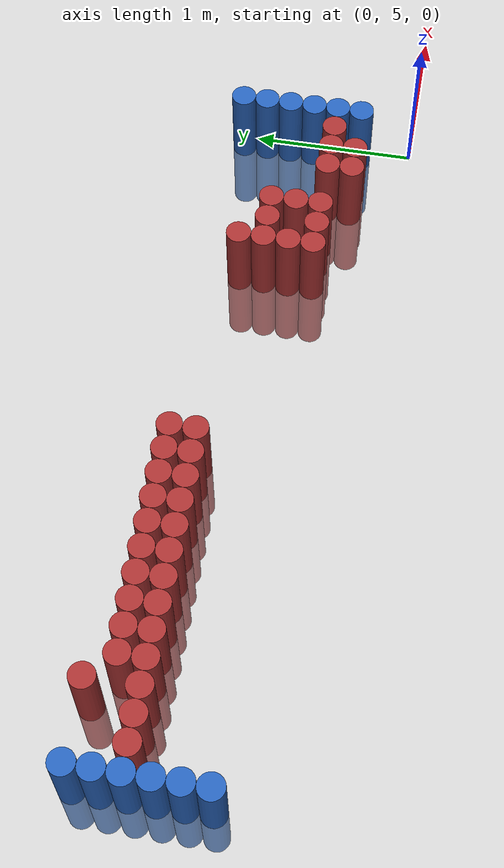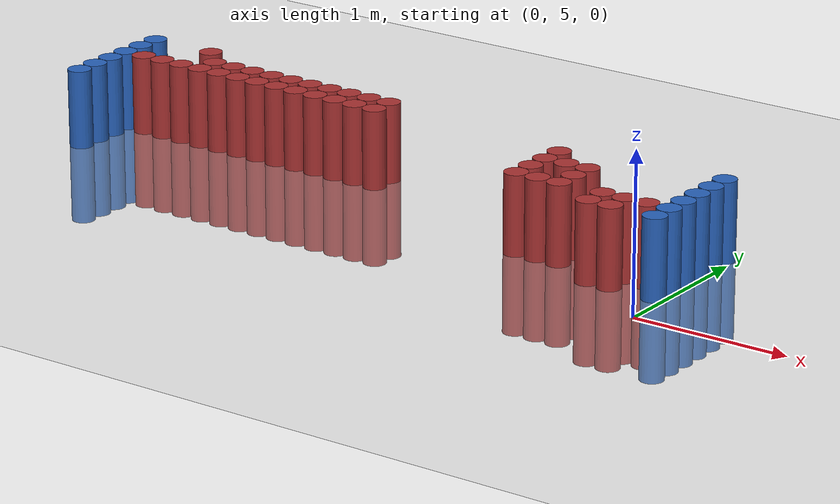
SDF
<sdf version="1.6">
 <world name="default">
  <model name="ground_plane">
   <static>1</static>
   <link name="link">
    <collision name="collision">
     <geometry><plane><normal>0 0 1</normal><size>100 100</size></plane></geometry>
     <surface><friction><ode><mu>100</mu><mu2>50</mu2></ode></friction></surface>
    </collision>
    <visual name="visual">
     <cast_shadows>0</cast_shadows>
     <geometry><plane><normal>0 0 1</normal><size>100 100</size></plane></geometry>
     <material>
      <script><uri>file://media/materials/scripts/gazebo.material</uri><name>Gazebo/Grey</name></script>
     </material>
    </visual>
   </link>
  </model>
  <model name="unit_cylinder_98">
   <static>1</static>
   <pose>-4.425000 5.475000 0.000000 0.000000 0.000000 0.000000</pose>
   <link name="link">
    <inertial>
     <mass>1</mass>
     <inertia><ixx>0.145833</ixx><ixy>0</ixy><ixz>0</ixz><iyy>0.145833</iyy><iyz>0</iyz><izz>0.125</izz></inertia>
    </inertial>
    <collision name="collision">
     <geometry><cylinder><radius>0.075000</radius><length>1</length></cylinder></geometry>
    </collision>
    <visual name="visual">
     <geometry><cylinder><radius>0.075000</radius><length>1</length></cylinder></geometry>
     <material>
      <ambient>0.152000 0.379000 0.720000 1</ambient>
      <diffuse>0.152000 0.379000 0.720000 1</diffuse>
     </material>
     <material>
      <script><name>Gazebo/Grey</name><uri>file://media/materials/scripts/gazebo.material</uri></script>
     </material>
    </visual>
   </link>
  </model>
  <model name="unit_cylinder_99">
   <static>1</static>
   <pose>-4.425000 5.625000 0.000000 0.000000 0.000000 0.000000</pose>
   <link name="link">
    <inertial>
     <mass>1</mass>
     <inertia><ixx>0.145833</ixx><ixy>0</ixy><ixz>0</ixz><iyy>0.145833</iyy><iyz>0</iyz><izz>0.125</izz></inertia>
    </inertial>
    <collision name="collision">
     <geometry><cylinder><radius>0.075000</radius><length>1</length></cylinder></geometry>
    </collision>
    <visual name="visual">
     <geometry><cylinder><radius>0.075000</radius><length>1</length></cylinder></geometry>
     <material>
      <ambient>0.152000 0.379000 0.720000 1</ambient>
      <diffuse>0.152000 0.379000 0.720000 1</diffuse>
     </material>
     <material>
      <script><name>Gazebo/Grey</name><uri>file://media/materials/scripts/gazebo.material</uri></script>
     </material>
    </visual>
   </link>
  </model>
  <model name="unit_cylinder_100">
   <static>1</static>
   <pose>-4.425000 5.775000 0.000000 0.000000 0.000000 0.000000</pose>
   <link name="link">
    <inertial>
     <mass>1</mass>
     <inertia><ixx>0.145833</ixx><ixy>0</ixy><ixz>0</ixz><iyy>0.145833</iyy><iyz>0</iyz><izz>0.125</izz></inertia>
    </inertial>
    <collision name="collision">
     <geometry><cylinder><radius>0.075000</radius><length>1</length></cylinder></geometry>
    </collision>
    <visual name="visual">
     <geometry><cylinder><radius>0.075000</radius><length>1</length></cylinder></geometry>
     <material>
      <ambient>0.152000 0.379000 0.720000 1</ambient>
      <diffuse>0.152000 0.379000 0.720000 1</diffuse>
     </material>
     <material>
      <script><name>Gazebo/Grey</name><uri>file://media/materials/scripts/gazebo.material</uri></script>
     </material>
    </visual>
   </link>
  </model>
  <model name="unit_cylinder_101">
   <static>1</static>
   <pose>-4.425000 5.925000 0.000000 0.000000 0.000000 0.000000</pose>
   <link name="link">
    <inertial>
     <mass>1</mass>
     <inertia><ixx>0.145833</ixx><ixy>0</ixy><ixz>0</ixz><iyy>0.145833</iyy><iyz>0</iyz><izz>0.125</izz></inertia>
    </inertial>
    <collision name="collision">
     <geometry><cylinder><radius>0.075000</radius><length>1</length></cylinder></geometry>
    </collision>
    <visual name="visual">
     <geometry><cylinder><radius>0.075000</radius><length>1</length></cylinder></geometry>
     <material>
      <ambient>0.152000 0.379000 0.720000 1</ambient>
      <diffuse>0.152000 0.379000 0.720000 1</diffuse>
     </material>
     <material>
      <script><name>Gazebo/Grey</name><uri>file://media/materials/scripts/gazebo.material</uri></script>
     </material>
    </visual>
   </link>
  </model>
  <model name="unit_cylinder_102">
   <static>1</static>
   <pose>-4.425000 6.075000 0.000000 0.000000 0.000000 0.000000</pose>
   <link name="link">
    <inertial>
     <mass>1</mass>
     <inertia><ixx>0.145833</ixx><ixy>0</ixy><ixz>0</ixz><iyy>0.145833</iyy><iyz>0</iyz><izz>0.125</izz></inertia>
    </inertial>
    <collision name="collision">
     <geometry><cylinder><radius>0.075000</radius><length>1</length></cylinder></geometry>
    </collision>
    <visual name="visual">
     <geometry><cylinder><radius>0.075000</radius><length>1</length></cylinder></geometry>
     <material>
      <ambient>0.152000 0.379000 0.720000 1</ambient>
      <diffuse>0.152000 0.379000 0.720000 1</diffuse>
     </material>
     <material>
      <script><name>Gazebo/Grey</name><uri>file://media/materials/scripts/gazebo.material</uri></script>
     </material>
    </visual>
   </link>
  </model>
  <model name="unit_cylinder_103">
   <static>1</static>
   <pose>-4.425000 6.225000 0.000000 0.000000 0.000000 0.000000</pose>
   <link name="link">
    <inertial>
     <mass>1</mass>
     <inertia><ixx>0.145833</ixx><ixy>0</ixy><ixz>0</ixz><iyy>0.145833</iyy><iyz>0</iyz><izz>0.125</izz></inertia>
    </inertial>
    <collision name="collision">
     <geometry><cylinder><radius>0.075000</radius><length>1</length></cylinder></geometry>
    </collision>
    <visual name="visual">
     <geometry><cylinder><radius>0.075000</radius><length>1</length></cylinder></geometry>
     <material>
      <ambient>0.152000 0.379000 0.720000 1</ambient>
      <diffuse>0.152000 0.379000 0.720000 1</diffuse>
     </material>
     <material>
      <script><name>Gazebo/Grey</name><uri>file://media/materials/scripts/gazebo.material</uri></script>
     </material>
    </visual>
   </link>
  </model>
  <model name="unit_cylinder_126">
   <static>1</static>
   <pose>-4.275000 5.925000 0.000000 0.000000 0.000000 0.000000</pose>
   <link name="link">
    <inertial>
     <mass>1</mass>
     <inertia><ixx>0.145833</ixx><ixy>0</ixy><ixz>0</ixz><iyy>0.145833</iyy><iyz>0</iyz><izz>0.125</izz></inertia>
    </inertial>
    <collision name="collision">
     <geometry><cylinder><radius>0.075000</radius><length>1</length></cylinder></geometry>
    </collision>
    <visual name="visual">
     <geometry><cylinder><radius>0.075000</radius><length>1</length></cylinder></geometry>
     <material>
      <ambient>0.648000 0.192000 0.192000 1</ambient>
      <diffuse>0.648000 0.192000 0.192000 1</diffuse>
     </material>
     <material>
      <script><name>Gazebo/Grey</name><uri>file://media/materials/scripts/gazebo.material</uri></script>
     </material>
    </visual>
   </link>
  </model>
  <model name="unit_cylinder_128">
   <static>1</static>
   <pose>-4.125000 5.925000 0.000000 0.000000 0.000000 0.000000</pose>
   <link name="link">
    <inertial>
     <mass>1</mass>
     <inertia><ixx>0.145833</ixx><ixy>0</ixy><ixz>0</ixz><iyy>0.145833</iyy><iyz>0</iyz><izz>0.125</izz></inertia>
    </inertial>
    <collision name="collision">
     <geometry><cylinder><radius>0.075000</radius><length>1</length></cylinder></geometry>
    </collision>
    <visual name="visual">
     <geometry><cylinder><radius>0.075000</radius><length>1</length></cylinder></geometry>
     <material>
      <ambient>0.648000 0.192000 0.192000 1</ambient>
      <diffuse>0.648000 0.192000 0.192000 1</diffuse>
     </material>
     <material>
      <script><name>Gazebo/Grey</name><uri>file://media/materials/scripts/gazebo.material</uri></script>
     </material>
    </visual>
   </link>
  </model>
  <model name="unit_cylinder_133">
   <static>1</static>
   <pose>-3.975000 5.925000 0.000000 0.000000 0.000000 0.000000</pose>
   <link name="link">
    <inertial>
     <mass>1</mass>
     <inertia><ixx>0.145833</ixx><ixy>0</ixy><ixz>0</ixz><iyy>0.145833</iyy><iyz>0</iyz><izz>0.125</izz></inertia>
    </inertial>
    <collision name="collision">
     <geometry><cylinder><radius>0.075000</radius><length>1</length></cylinder></geometry>
    </collision>
    <visual name="visual">
     <geometry><cylinder><radius>0.075000</radius><length>1</length></cylinder></geometry>
     <material>
      <ambient>0.648000 0.192000 0.192000 1</ambient>
      <diffuse>0.648000 0.192000 0.192000 1</diffuse>
     </material>
     <material>
      <script><name>Gazebo/Grey</name><uri>file://media/materials/scripts/gazebo.material</uri></script>
     </material>
    </visual>
   </link>
  </model>
  <model name="unit_cylinder_134">
   <static>1</static>
   <pose>-3.975000 6.225000 0.000000 0.000000 0.000000 0.000000</pose>
   <link name="link">
    <inertial>
     <mass>1</mass>
     <inertia><ixx>0.145833</ixx><ixy>0</ixy><ixz>0</ixz><iyy>0.145833</iyy><iyz>0</iyz><izz>0.125</izz></inertia>
    </inertial>
    <collision name="collision">
     <geometry><cylinder><radius>0.075000</radius><length>1</length></cylinder></geometry>
    </collision>
    <visual name="visual">
     <geometry><cylinder><radius>0.075000</radius><length>1</length></cylinder></geometry>
     <material>
      <ambient>0.648000 0.192000 0.192000 1</ambient>
      <diffuse>0.648000 0.192000 0.192000 1</diffuse>
     </material>
     <material>
      <script><name>Gazebo/Grey</name><uri>file://media/materials/scripts/gazebo.material</uri></script>
     </material>
    </visual>
   </link>
  </model>
  <model name="unit_cylinder_151">
   <static>1</static>
   <pose>-3.825000 5.925000 0.000000 0.000000 0.000000 0.000000</pose>
   <link name="link">
    <inertial>
     <mass>1</mass>
     <inertia><ixx>0.145833</ixx><ixy>0</ixy><ixz>0</ixz><iyy>0.145833</iyy><iyz>0</iyz><izz>0.125</izz></inertia>
    </inertial>
    <collision name="collision">
     <geometry><cylinder><radius>0.075000</radius><length>1</length></cylinder></geometry>
    </collision>
    <visual name="visual">
     <geometry><cylinder><radius>0.075000</radius><length>1</length></cylinder></geometry>
     <material>
      <ambient>0.648000 0.192000 0.192000 1</ambient>
      <diffuse>0.648000 0.192000 0.192000 1</diffuse>
     </material>
     <material>
      <script><name>Gazebo/Grey</name><uri>file://media/materials/scripts/gazebo.material</uri></script>
     </material>
    </visual>
   </link>
  </model>
  <model name="unit_cylinder_152">
   <static>1</static>
   <pose>-3.825000 6.075000 0.000000 0.000000 0.000000 0.000000</pose>
   <link name="link">
    <inertial>
     <mass>1</mass>
     <inertia><ixx>0.145833</ixx><ixy>0</ixy><ixz>0</ixz><iyy>0.145833</iyy><iyz>0</iyz><izz>0.125</izz></inertia>
    </inertial>
    <collision name="collision">
     <geometry><cylinder><radius>0.075000</radius><length>1</length></cylinder></geometry>
    </collision>
    <visual name="visual">
     <geometry><cylinder><radius>0.075000</radius><length>1</length></cylinder></geometry>
     <material>
      <ambient>0.648000 0.192000 0.192000 1</ambient>
      <diffuse>0.648000 0.192000 0.192000 1</diffuse>
     </material>
     <material>
      <script><name>Gazebo/Grey</name><uri>file://media/materials/scripts/gazebo.material</uri></script>
     </material>
    </visual>
   </link>
  </model>
  <model name="unit_cylinder_158">
   <static>1</static>
   <pose>-3.675000 5.925000 0.000000 0.000000 0.000000 0.000000</pose>
   <link name="link">
    <inertial>
     <mass>1</mass>
     <inertia><ixx>0.145833</ixx><ixy>0</ixy><ixz>0</ixz><iyy>0.145833</iyy><iyz>0</iyz><izz>0.125</izz></inertia>
    </inertial>
    <collision name="collision">
     <geometry><cylinder><radius>0.075000</radius><length>1</length></cylinder></geometry>
    </collision>
    <visual name="visual">
     <geometry><cylinder><radius>0.075000</radius><length>1</length></cylinder></geometry>
     <material>
      <ambient>0.648000 0.192000 0.192000 1</ambient>
      <diffuse>0.648000 0.192000 0.192000 1</diffuse>
     </material>
     <material>
      <script><name>Gazebo/Grey</name><uri>file://media/materials/scripts/gazebo.material</uri></script>
     </material>
    </visual>
   </link>
  </model>
  <model name="unit_cylinder_159">
   <static>1</static>
   <pose>-3.675000 6.075000 0.000000 0.000000 0.000000 0.000000</pose>
   <link name="link">
    <inertial>
     <mass>1</mass>
     <inertia><ixx>0.145833</ixx><ixy>0</ixy><ixz>0</ixz><iyy>0.145833</iyy><iyz>0</iyz><izz>0.125</izz></inertia>
    </inertial>
    <collision name="collision">
     <geometry><cylinder><radius>0.075000</radius><length>1</length></cylinder></geometry>
    </collision>
    <visual name="visual">
     <geometry><cylinder><radius>0.075000</radius><length>1</length></cylinder></geometry>
     <material>
      <ambient>0.648000 0.192000 0.192000 1</ambient>
      <diffuse>0.648000 0.192000 0.192000 1</diffuse>
     </material>
     <material>
      <script><name>Gazebo/Grey</name><uri>file://media/materials/scripts/gazebo.material</uri></script>
     </material>
    </visual>
   </link>
  </model>
  <model name="unit_cylinder_172">
   <static>1</static>
   <pose>-3.525000 5.925000 0.000000 0.000000 0.000000 0.000000</pose>
   <link name="link">
    <inertial>
     <mass>1</mass>
     <inertia><ixx>0.145833</ixx><ixy>0</ixy><ixz>0</ixz><iyy>0.145833</iyy><iyz>0</iyz><izz>0.125</izz></inertia>
    </inertial>
    <collision name="collision">
     <geometry><cylinder><radius>0.075000</radius><length>1</length></cylinder></geometry>
    </collision>
    <visual name="visual">
     <geometry><cylinder><radius>0.075000</radius><length>1</length></cylinder></geometry>
     <material>
      <ambient>0.648000 0.192000 0.192000 1</ambient>
      <diffuse>0.648000 0.192000 0.192000 1</diffuse>
     </material>
     <material>
      <script><name>Gazebo/Grey</name><uri>file://media/materials/scripts/gazebo.material</uri></script>
     </material>
    </visual>
   </link>
  </model>
  <model name="unit_cylinder_173">
   <static>1</static>
   <pose>-3.525000 6.075000 0.000000 0.000000 0.000000 0.000000</pose>
   <link name="link">
    <inertial>
     <mass>1</mass>
     <inertia><ixx>0.145833</ixx><ixy>0</ixy><ixz>0</ixz><iyy>0.145833</iyy><iyz>0</iyz><izz>0.125</izz></inertia>
    </inertial>
    <collision name="collision">
     <geometry><cylinder><radius>0.075000</radius><length>1</length></cylinder></geometry>
    </collision>
    <visual name="visual">
     <geometry><cylinder><radius>0.075000</radius><length>1</length></cylinder></geometry>
     <material>
      <ambient>0.648000 0.192000 0.192000 1</ambient>
      <diffuse>0.648000 0.192000 0.192000 1</diffuse>
     </material>
     <material>
      <script><name>Gazebo/Grey</name><uri>file://media/materials/scripts/gazebo.material</uri></script>
     </material>
    </visual>
   </link>
  </model>
  <model name="unit_cylinder_186">
   <static>1</static>
   <pose>-3.375000 5.925000 0.000000 0.000000 0.000000 0.000000</pose>
   <link name="link">
    <inertial>
     <mass>1</mass>
     <inertia><ixx>0.145833</ixx><ixy>0</ixy><ixz>0</ixz><iyy>0.145833</iyy><iyz>0</iyz><izz>0.125</izz></inertia>
    </inertial>
    <collision name="collision">
     <geometry><cylinder><radius>0.075000</radius><length>1</length></cylinder></geometry>
    </collision>
    <visual name="visual">
     <geometry><cylinder><radius>0.075000</radius><length>1</length></cylinder></geometry>
     <material>
      <ambient>0.648000 0.192000 0.192000 1</ambient>
      <diffuse>0.648000 0.192000 0.192000 1</diffuse>
     </material>
     <material>
      <script><name>Gazebo/Grey</name><uri>file://media/materials/scripts/gazebo.material</uri></script>
     </material>
    </visual>
   </link>
  </model>
  <model name="unit_cylinder_187">
   <static>1</static>
   <pose>-3.375000 6.075000 0.000000 0.000000 0.000000 0.000000</pose>
   <link name="link">
    <inertial>
     <mass>1</mass>
     <inertia><ixx>0.145833</ixx><ixy>0</ixy><ixz>0</ixz><iyy>0.145833</iyy><iyz>0</iyz><izz>0.125</izz></inertia>
    </inertial>
    <collision name="collision">
     <geometry><cylinder><radius>0.075000</radius><length>1</length></cylinder></geometry>
    </collision>
    <visual name="visual">
     <geometry><cylinder><radius>0.075000</radius><length>1</length></cylinder></geometry>
     <material>
      <ambient>0.648000 0.192000 0.192000 1</ambient>
      <diffuse>0.648000 0.192000 0.192000 1</diffuse>
     </material>
     <material>
      <script><name>Gazebo/Grey</name><uri>file://media/materials/scripts/gazebo.material</uri></script>
     </material>
    </visual>
   </link>
  </model>
  <model name="unit_cylinder_198">
   <static>1</static>
   <pose>-3.225000 5.925000 0.000000 0.000000 0.000000 0.000000</pose>
   <link name="link">
    <inertial>
     <mass>1</mass>
     <inertia><ixx>0.145833</ixx><ixy>0</ixy><ixz>0</ixz><iyy>0.145833</iyy><iyz>0</iyz><izz>0.125</izz></inertia>
    </inertial>
    <collision name="collision">
     <geometry><cylinder><radius>0.075000</radius><length>1</length></cylinder></geometry>
    </collision>
    <visual name="visual">
     <geometry><cylinder><radius>0.075000</radius><length>1</length></cylinder></geometry>
     <material>
      <ambient>0.648000 0.192000 0.192000 1</ambient>
      <diffuse>0.648000 0.192000 0.192000 1</diffuse>
     </material>
     <material>
      <script><name>Gazebo/Grey</name><uri>file://media/materials/scripts/gazebo.material</uri></script>
     </material>
    </visual>
   </link>
  </model>
  <model name="unit_cylinder_199">
   <static>1</static>
   <pose>-3.225000 6.075000 0.000000 0.000000 0.000000 0.000000</pose>
   <link name="link">
    <inertial>
     <mass>1</mass>
     <inertia><ixx>0.145833</ixx><ixy>0</ixy><ixz>0</ixz><iyy>0.145833</iyy><iyz>0</iyz><izz>0.125</izz></inertia>
    </inertial>
    <collision name="collision">
     <geometry><cylinder><radius>0.075000</radius><length>1</length></cylinder></geometry>
    </collision>
    <visual name="visual">
     <geometry><cylinder><radius>0.075000</radius><length>1</length></cylinder></geometry>
     <material>
      <ambient>0.648000 0.192000 0.192000 1</ambient>
      <diffuse>0.648000 0.192000 0.192000 1</diffuse>
     </material>
     <material>
      <script><name>Gazebo/Grey</name><uri>file://media/materials/scripts/gazebo.material</uri></script>
     </material>
    </visual>
   </link>
  </model>
  <model name="unit_cylinder_210">
   <static>1</static>
   <pose>-3.075000 5.925000 0.000000 0.000000 0.000000 0.000000</pose>
   <link name="link">
    <inertial>
     <mass>1</mass>
     <inertia><ixx>0.145833</ixx><ixy>0</ixy><ixz>0</ixz><iyy>0.145833</iyy><iyz>0</iyz><izz>0.125</izz></inertia>
    </inertial>
    <collision name="collision">
     <geometry><cylinder><radius>0.075000</radius><length>1</length></cylinder></geometry>
    </collision>
    <visual name="visual">
     <geometry><cylinder><radius>0.075000</radius><length>1</length></cylinder></geometry>
     <material>
      <ambient>0.648000 0.192000 0.192000 1</ambient>
      <diffuse>0.648000 0.192000 0.192000 1</diffuse>
     </material>
     <material>
      <script><name>Gazebo/Grey</name><uri>file://media/materials/scripts/gazebo.material</uri></script>
     </material>
    </visual>
   </link>
  </model>
  <model name="unit_cylinder_211">
   <static>1</static>
   <pose>-3.075000 6.075000 0.000000 0.000000 0.000000 0.000000</pose>
   <link name="link">
    <inertial>
     <mass>1</mass>
     <inertia><ixx>0.145833</ixx><ixy>0</ixy><ixz>0</ixz><iyy>0.145833</iyy><iyz>0</iyz><izz>0.125</izz></inertia>
    </inertial>
    <collision name="collision">
     <geometry><cylinder><radius>0.075000</radius><length>1</length></cylinder></geometry>
    </collision>
    <visual name="visual">
     <geometry><cylinder><radius>0.075000</radius><length>1</length></cylinder></geometry>
     <material>
      <ambient>0.648000 0.192000 0.192000 1</ambient>
      <diffuse>0.648000 0.192000 0.192000 1</diffuse>
     </material>
     <material>
      <script><name>Gazebo/Grey</name><uri>file://media/materials/scripts/gazebo.material</uri></script>
     </material>
    </visual>
   </link>
  </model>
  <model name="unit_cylinder_222">
   <static>1</static>
   <pose>-2.925000 5.925000 0.000000 0.000000 0.000000 0.000000</pose>
   <link name="link">
    <inertial>
     <mass>1</mass>
     <inertia><ixx>0.145833</ixx><ixy>0</ixy><ixz>0</ixz><iyy>0.145833</iyy><iyz>0</iyz><izz>0.125</izz></inertia>
    </inertial>
    <collision name="collision">
     <geometry><cylinder><radius>0.075000</radius><length>1</length></cylinder></geometry>
    </collision>
    <visual name="visual">
     <geometry><cylinder><radius>0.075000</radius><length>1</length></cylinder></geometry>
     <material>
      <ambient>0.648000 0.192000 0.192000 1</ambient>
      <diffuse>0.648000 0.192000 0.192000 1</diffuse>
     </material>
     <material>
      <script><name>Gazebo/Grey</name><uri>file://media/materials/scripts/gazebo.material</uri></script>
     </material>
    </visual>
   </link>
  </model>
  <model name="unit_cylinder_223">
   <static>1</static>
   <pose>-2.925000 6.075000 0.000000 0.000000 0.000000 0.000000</pose>
   <link name="link">
    <inertial>
     <mass>1</mass>
     <inertia><ixx>0.145833</ixx><ixy>0</ixy><ixz>0</ixz><iyy>0.145833</iyy><iyz>0</iyz><izz>0.125</izz></inertia>
    </inertial>
    <collision name="collision">
     <geometry><cylinder><radius>0.075000</radius><length>1</length></cylinder></geometry>
    </collision>
    <visual name="visual">
     <geometry><cylinder><radius>0.075000</radius><length>1</length></cylinder></geometry>
     <material>
      <ambient>0.648000 0.192000 0.192000 1</ambient>
      <diffuse>0.648000 0.192000 0.192000 1</diffuse>
     </material>
     <material>
      <script><name>Gazebo/Grey</name><uri>file://media/materials/scripts/gazebo.material</uri></script>
     </material>
    </visual>
   </link>
  </model>
  <model name="unit_cylinder_234">
   <static>1</static>
   <pose>-2.775000 5.925000 0.000000 0.000000 0.000000 0.000000</pose>
   <link name="link">
    <inertial>
     <mass>1</mass>
     <inertia><ixx>0.145833</ixx><ixy>0</ixy><ixz>0</ixz><iyy>0.145833</iyy><iyz>0</iyz><izz>0.125</izz></inertia>
    </inertial>
    <collision name="collision">
     <geometry><cylinder><radius>0.075000</radius><length>1</length></cylinder></geometry>
    </collision>
    <visual name="visual">
     <geometry><cylinder><radius>0.075000</radius><length>1</length></cylinder></geometry>
     <material>
      <ambient>0.648000 0.192000 0.192000 1</ambient>
      <diffuse>0.648000 0.192000 0.192000 1</diffuse>
     </material>
     <material>
      <script><name>Gazebo/Grey</name><uri>file://media/materials/scripts/gazebo.material</uri></script>
     </material>
    </visual>
   </link>
  </model>
  <model name="unit_cylinder_235">
   <static>1</static>
   <pose>-2.775000 6.075000 0.000000 0.000000 0.000000 0.000000</pose>
   <link name="link">
    <inertial>
     <mass>1</mass>
     <inertia><ixx>0.145833</ixx><ixy>0</ixy><ixz>0</ixz><iyy>0.145833</iyy><iyz>0</iyz><izz>0.125</izz></inertia>
    </inertial>
    <collision name="collision">
     <geometry><cylinder><radius>0.075000</radius><length>1</length></cylinder></geometry>
    </collision>
    <visual name="visual">
     <geometry><cylinder><radius>0.075000</radius><length>1</length></cylinder></geometry>
     <material>
      <ambient>0.648000 0.192000 0.192000 1</ambient>
      <diffuse>0.648000 0.192000 0.192000 1</diffuse>
     </material>
     <material>
      <script><name>Gazebo/Grey</name><uri>file://media/materials/scripts/gazebo.material</uri></script>
     </material>
    </visual>
   </link>
  </model>
  <model name="unit_cylinder_246">
   <static>1</static>
   <pose>-2.625000 5.925000 0.000000 0.000000 0.000000 0.000000</pose>
   <link name="link">
    <inertial>
     <mass>1</mass>
     <inertia><ixx>0.145833</ixx><ixy>0</ixy><ixz>0</ixz><iyy>0.145833</iyy><iyz>0</iyz><izz>0.125</izz></inertia>
    </inertial>
    <collision name="collision">
     <geometry><cylinder><radius>0.075000</radius><length>1</length></cylinder></geometry>
    </collision>
    <visual name="visual">
     <geometry><cylinder><radius>0.075000</radius><length>1</length></cylinder></geometry>
     <material>
      <ambient>0.648000 0.192000 0.192000 1</ambient>
      <diffuse>0.648000 0.192000 0.192000 1</diffuse>
     </material>
     <material>
      <script><name>Gazebo/Grey</name><uri>file://media/materials/scripts/gazebo.material</uri></script>
     </material>
    </visual>
   </link>
  </model>
  <model name="unit_cylinder_247">
   <static>1</static>
   <pose>-2.625000 6.075000 0.000000 0.000000 0.000000 0.000000</pose>
   <link name="link">
    <inertial>
     <mass>1</mass>
     <inertia><ixx>0.145833</ixx><ixy>0</ixy><ixz>0</ixz><iyy>0.145833</iyy><iyz>0</iyz><izz>0.125</izz></inertia>
    </inertial>
    <collision name="collision">
     <geometry><cylinder><radius>0.075000</radius><length>1</length></cylinder></geometry>
    </collision>
    <visual name="visual">
     <geometry><cylinder><radius>0.075000</radius><length>1</length></cylinder></geometry>
     <material>
      <ambient>0.648000 0.192000 0.192000 1</ambient>
      <diffuse>0.648000 0.192000 0.192000 1</diffuse>
     </material>
     <material>
      <script><name>Gazebo/Grey</name><uri>file://media/materials/scripts/gazebo.material</uri></script>
     </material>
    </visual>
   </link>
  </model>
  <model name="unit_cylinder_259">
   <static>1</static>
   <pose>-2.475000 5.925000 0.000000 0.000000 0.000000 0.000000</pose>
   <link name="link">
    <inertial>
     <mass>1</mass>
     <inertia><ixx>0.145833</ixx><ixy>0</ixy><ixz>0</ixz><iyy>0.145833</iyy><iyz>0</iyz><izz>0.125</izz></inertia>
    </inertial>
    <collision name="collision">
     <geometry><cylinder><radius>0.075000</radius><length>1</length></cylinder></geometry>
    </collision>
    <visual name="visual">
     <geometry><cylinder><radius>0.075000</radius><length>1</length></cylinder></geometry>
     <material>
      <ambient>0.648000 0.192000 0.192000 1</ambient>
      <diffuse>0.648000 0.192000 0.192000 1</diffuse>
     </material>
     <material>
      <script><name>Gazebo/Grey</name><uri>file://media/materials/scripts/gazebo.material</uri></script>
     </material>
    </visual>
   </link>
  </model>
  <model name="unit_cylinder_260">
   <static>1</static>
   <pose>-2.475000 6.075000 0.000000 0.000000 0.000000 0.000000</pose>
   <link name="link">
    <inertial>
     <mass>1</mass>
     <inertia><ixx>0.145833</ixx><ixy>0</ixy><ixz>0</ixz><iyy>0.145833</iyy><iyz>0</iyz><izz>0.125</izz></inertia>
    </inertial>
    <collision name="collision">
     <geometry><cylinder><radius>0.075000</radius><length>1</length></cylinder></geometry>
    </collision>
    <visual name="visual">
     <geometry><cylinder><radius>0.075000</radius><length>1</length></cylinder></geometry>
     <material>
      <ambient>0.648000 0.192000 0.192000 1</ambient>
      <diffuse>0.648000 0.192000 0.192000 1</diffuse>
     </material>
     <material>
      <script><name>Gazebo/Grey</name><uri>file://media/materials/scripts/gazebo.material</uri></script>
     </material>
    </visual>
   </link>
  </model>
  <model name="unit_cylinder_277">
   <static>1</static>
   <pose>-1.125000 5.475000 0.000000 0.000000 0.000000 0.000000</pose>
   <link name="link">
    <inertial>
     <mass>1</mass>
     <inertia><ixx>0.145833</ixx><ixy>0</ixy><ixz>0</ixz><iyy>0.145833</iyy><iyz>0</iyz><izz>0.125</izz></inertia>
    </inertial>
    <collision name="collision">
     <geometry><cylinder><radius>0.075000</radius><length>1</length></cylinder></geometry>
    </collision>
    <visual name="visual">
     <geometry><cylinder><radius>0.075000</radius><length>1</length></cylinder></geometry>
     <material>
      <ambient>0.648000 0.192000 0.192000 1</ambient>
      <diffuse>0.648000 0.192000 0.192000 1</diffuse>
     </material>
     <material>
      <script><name>Gazebo/Grey</name><uri>file://media/materials/scripts/gazebo.material</uri></script>
     </material>
    </visual>
   </link>
  </model>
  <model name="unit_cylinder_278">
   <static>1</static>
   <pose>-1.125000 5.625000 0.000000 0.000000 0.000000 0.000000</pose>
   <link name="link">
    <inertial>
     <mass>1</mass>
     <inertia><ixx>0.145833</ixx><ixy>0</ixy><ixz>0</ixz><iyy>0.145833</iyy><iyz>0</iyz><izz>0.125</izz></inertia>
    </inertial>
    <collision name="collision">
     <geometry><cylinder><radius>0.075000</radius><length>1</length></cylinder></geometry>
    </collision>
    <visual name="visual">
     <geometry><cylinder><radius>0.075000</radius><length>1</length></cylinder></geometry>
     <material>
      <ambient>0.648000 0.192000 0.192000 1</ambient>
      <diffuse>0.648000 0.192000 0.192000 1</diffuse>
     </material>
     <material>
      <script><name>Gazebo/Grey</name><uri>file://media/materials/scripts/gazebo.material</uri></script>
     </material>
    </visual>
   </link>
  </model>
  <model name="unit_cylinder_279">
   <static>1</static>
   <pose>-1.125000 5.775000 0.000000 0.000000 0.000000 0.000000</pose>
   <link name="link">
    <inertial>
     <mass>1</mass>
     <inertia><ixx>0.145833</ixx><ixy>0</ixy><ixz>0</ixz><iyy>0.145833</iyy><iyz>0</iyz><izz>0.125</izz></inertia>
    </inertial>
    <collision name="collision">
     <geometry><cylinder><radius>0.075000</radius><length>1</length></cylinder></geometry>
    </collision>
    <visual name="visual">
     <geometry><cylinder><radius>0.075000</radius><length>1</length></cylinder></geometry>
     <material>
      <ambient>0.648000 0.192000 0.192000 1</ambient>
      <diffuse>0.648000 0.192000 0.192000 1</diffuse>
     </material>
     <material>
      <script><name>Gazebo/Grey</name><uri>file://media/materials/scripts/gazebo.material</uri></script>
     </material>
    </visual>
   </link>
  </model>
  <model name="unit_cylinder_280">
   <static>1</static>
   <pose>-1.125000 5.925000 0.000000 0.000000 0.000000 0.000000</pose>
   <link name="link">
    <inertial>
     <mass>1</mass>
     <inertia><ixx>0.145833</ixx><ixy>0</ixy><ixz>0</ixz><iyy>0.145833</iyy><iyz>0</iyz><izz>0.125</izz></inertia>
    </inertial>
    <collision name="collision">
     <geometry><cylinder><radius>0.075000</radius><length>1</length></cylinder></geometry>
    </collision>
    <visual name="visual">
     <geometry><cylinder><radius>0.075000</radius><length>1</length></cylinder></geometry>
     <material>
      <ambient>0.648000 0.192000 0.192000 1</ambient>
      <diffuse>0.648000 0.192000 0.192000 1</diffuse>
     </material>
     <material>
      <script><name>Gazebo/Grey</name><uri>file://media/materials/scripts/gazebo.material</uri></script>
     </material>
    </visual>
   </link>
  </model>
  <model name="unit_cylinder_281">
   <static>1</static>
   <pose>-0.975000 5.475000 0.000000 0.000000 0.000000 0.000000</pose>
   <link name="link">
    <inertial>
     <mass>1</mass>
     <inertia><ixx>0.145833</ixx><ixy>0</ixy><ixz>0</ixz><iyy>0.145833</iyy><iyz>0</iyz><izz>0.125</izz></inertia>
    </inertial>
    <collision name="collision">
     <geometry><cylinder><radius>0.075000</radius><length>1</length></cylinder></geometry>
    </collision>
    <visual name="visual">
     <geometry><cylinder><radius>0.075000</radius><length>1</length></cylinder></geometry>
     <material>
      <ambient>0.648000 0.192000 0.192000 1</ambient>
      <diffuse>0.648000 0.192000 0.192000 1</diffuse>
     </material>
     <material>
      <script><name>Gazebo/Grey</name><uri>file://media/materials/scripts/gazebo.material</uri></script>
     </material>
    </visual>
   </link>
  </model>
  <model name="unit_cylinder_282">
   <static>1</static>
   <pose>-0.975000 5.775000 0.000000 0.000000 0.000000 0.000000</pose>
   <link name="link">
    <inertial>
     <mass>1</mass>
     <inertia><ixx>0.145833</ixx><ixy>0</ixy><ixz>0</ixz><iyy>0.145833</iyy><iyz>0</iyz><izz>0.125</izz></inertia>
    </inertial>
    <collision name="collision">
     <geometry><cylinder><radius>0.075000</radius><length>1</length></cylinder></geometry>
    </collision>
    <visual name="visual">
     <geometry><cylinder><radius>0.075000</radius><length>1</length></cylinder></geometry>
     <material>
      <ambient>0.648000 0.192000 0.192000 1</ambient>
      <diffuse>0.648000 0.192000 0.192000 1</diffuse>
     </material>
     <material>
      <script><name>Gazebo/Grey</name><uri>file://media/materials/scripts/gazebo.material</uri></script>
     </material>
    </visual>
   </link>
  </model>
  <model name="unit_cylinder_283">
   <static>1</static>
   <pose>-0.825000 5.475000 0.000000 0.000000 0.000000 0.000000</pose>
   <link name="link">
    <inertial>
     <mass>1</mass>
     <inertia><ixx>0.145833</ixx><ixy>0</ixy><ixz>0</ixz><iyy>0.145833</iyy><iyz>0</iyz><izz>0.125</izz></inertia>
    </inertial>
    <collision name="collision">
     <geometry><cylinder><radius>0.075000</radius><length>1</length></cylinder></geometry>
    </collision>
    <visual name="visual">
     <geometry><cylinder><radius>0.075000</radius><length>1</length></cylinder></geometry>
     <material>
      <ambient>0.648000 0.192000 0.192000 1</ambient>
      <diffuse>0.648000 0.192000 0.192000 1</diffuse>
     </material>
     <material>
      <script><name>Gazebo/Grey</name><uri>file://media/materials/scripts/gazebo.material</uri></script>
     </material>
    </visual>
   </link>
  </model>
  <model name="unit_cylinder_284">
   <static>1</static>
   <pose>-0.825000 5.625000 0.000000 0.000000 0.000000 0.000000</pose>
   <link name="link">
    <inertial>
     <mass>1</mass>
     <inertia><ixx>0.145833</ixx><ixy>0</ixy><ixz>0</ixz><iyy>0.145833</iyy><iyz>0</iyz><izz>0.125</izz></inertia>
    </inertial>
    <collision name="collision">
     <geometry><cylinder><radius>0.075000</radius><length>1</length></cylinder></geometry>
    </collision>
    <visual name="visual">
     <geometry><cylinder><radius>0.075000</radius><length>1</length></cylinder></geometry>
     <material>
      <ambient>0.648000 0.192000 0.192000 1</ambient>
      <diffuse>0.648000 0.192000 0.192000 1</diffuse>
     </material>
     <material>
      <script><name>Gazebo/Grey</name><uri>file://media/materials/scripts/gazebo.material</uri></script>
     </material>
    </visual>
   </link>
  </model>
  <model name="unit_cylinder_285">
   <static>1</static>
   <pose>-0.825000 5.775000 0.000000 0.000000 0.000000 0.000000</pose>
   <link name="link">
    <inertial>
     <mass>1</mass>
     <inertia><ixx>0.145833</ixx><ixy>0</ixy><ixz>0</ixz><iyy>0.145833</iyy><iyz>0</iyz><izz>0.125</izz></inertia>
    </inertial>
    <collision name="collision">
     <geometry><cylinder><radius>0.075000</radius><length>1</length></cylinder></geometry>
    </collision>
    <visual name="visual">
     <geometry><cylinder><radius>0.075000</radius><length>1</length></cylinder></geometry>
     <material>
      <ambient>0.648000 0.192000 0.192000 1</ambient>
      <diffuse>0.648000 0.192000 0.192000 1</diffuse>
     </material>
     <material>
      <script><name>Gazebo/Grey</name><uri>file://media/materials/scripts/gazebo.material</uri></script>
     </material>
    </visual>
   </link>
  </model>
  <model name="unit_cylinder_300">
   <static>1</static>
   <pose>-0.525000 5.325000 0.000000 0.000000 0.000000 0.000000</pose>
   <link name="link">
    <inertial>
     <mass>1</mass>
     <inertia><ixx>0.145833</ixx><ixy>0</ixy><ixz>0</ixz><iyy>0.145833</iyy><iyz>0</iyz><izz>0.125</izz></inertia>
    </inertial>
    <collision name="collision">
     <geometry><cylinder><radius>0.075000</radius><length>1</length></cylinder></geometry>
    </collision>
    <visual name="visual">
     <geometry><cylinder><radius>0.075000</radius><length>1</length></cylinder></geometry>
     <material>
      <ambient>0.648000 0.192000 0.192000 1</ambient>
      <diffuse>0.648000 0.192000 0.192000 1</diffuse>
     </material>
     <material>
      <script><name>Gazebo/Grey</name><uri>file://media/materials/scripts/gazebo.material</uri></script>
     </material>
    </visual>
   </link>
  </model>
  <model name="unit_cylinder_301">
   <static>1</static>
   <pose>-0.525000 5.475000 0.000000 0.000000 0.000000 0.000000</pose>
   <link name="link">
    <inertial>
     <mass>1</mass>
     <inertia><ixx>0.145833</ixx><ixy>0</ixy><ixz>0</ixz><iyy>0.145833</iyy><iyz>0</iyz><izz>0.125</izz></inertia>
    </inertial>
    <collision name="collision">
     <geometry><cylinder><radius>0.075000</radius><length>1</length></cylinder></geometry>
    </collision>
    <visual name="visual">
     <geometry><cylinder><radius>0.075000</radius><length>1</length></cylinder></geometry>
     <material>
      <ambient>0.648000 0.192000 0.192000 1</ambient>
      <diffuse>0.648000 0.192000 0.192000 1</diffuse>
     </material>
     <material>
      <script><name>Gazebo/Grey</name><uri>file://media/materials/scripts/gazebo.material</uri></script>
     </material>
    </visual>
   </link>
  </model>
  <model name="unit_cylinder_318">
   <static>1</static>
   <pose>-0.375000 5.325000 0.000000 0.000000 0.000000 0.000000</pose>
   <link name="link">
    <inertial>
     <mass>1</mass>
     <inertia><ixx>0.145833</ixx><ixy>0</ixy><ixz>0</ixz><iyy>0.145833</iyy><iyz>0</iyz><izz>0.125</izz></inertia>
    </inertial>
    <collision name="collision">
     <geometry><cylinder><radius>0.075000</radius><length>1</length></cylinder></geometry>
    </collision>
    <visual name="visual">
     <geometry><cylinder><radius>0.075000</radius><length>1</length></cylinder></geometry>
     <material>
      <ambient>0.648000 0.192000 0.192000 1</ambient>
      <diffuse>0.648000 0.192000 0.192000 1</diffuse>
     </material>
     <material>
      <script><name>Gazebo/Grey</name><uri>file://media/materials/scripts/gazebo.material</uri></script>
     </material>
    </visual>
   </link>
  </model>
  <model name="unit_cylinder_319">
   <static>1</static>
   <pose>-0.375000 5.475000 0.000000 0.000000 0.000000 0.000000</pose>
   <link name="link">
    <inertial>
     <mass>1</mass>
     <inertia><ixx>0.145833</ixx><ixy>0</ixy><ixz>0</ixz><iyy>0.145833</iyy><iyz>0</iyz><izz>0.125</izz></inertia>
    </inertial>
    <collision name="collision">
     <geometry><cylinder><radius>0.075000</radius><length>1</length></cylinder></geometry>
    </collision>
    <visual name="visual">
     <geometry><cylinder><radius>0.075000</radius><length>1</length></cylinder></geometry>
     <material>
      <ambient>0.648000 0.192000 0.192000 1</ambient>
      <diffuse>0.648000 0.192000 0.192000 1</diffuse>
     </material>
     <material>
      <script><name>Gazebo/Grey</name><uri>file://media/materials/scripts/gazebo.material</uri></script>
     </material>
    </visual>
   </link>
  </model>
  <model name="unit_cylinder_321">
   <static>1</static>
   <pose>-0.225000 5.475000 0.000000 0.000000 0.000000 0.000000</pose>
   <link name="link">
    <inertial>
     <mass>1</mass>
     <inertia><ixx>0.145833</ixx><ixy>0</ixy><ixz>0</ixz><iyy>0.145833</iyy><iyz>0</iyz><izz>0.125</izz></inertia>
    </inertial>
    <collision name="collision">
     <geometry><cylinder><radius>0.075000</radius><length>1</length></cylinder></geometry>
    </collision>
    <visual name="visual">
     <geometry><cylinder><radius>0.075000</radius><length>1</length></cylinder></geometry>
     <material>
      <ambient>0.648000 0.192000 0.192000 1</ambient>
      <diffuse>0.648000 0.192000 0.192000 1</diffuse>
     </material>
     <material>
      <script><name>Gazebo/Grey</name><uri>file://media/materials/scripts/gazebo.material</uri></script>
     </material>
    </visual>
   </link>
  </model>
  <model name="unit_cylinder_323">
   <static>1</static>
   <pose>-0.075000 5.325000 0.000000 0.000000 0.000000 0.000000</pose>
   <link name="link">
    <inertial>
     <mass>1</mass>
     <inertia><ixx>0.145833</ixx><ixy>0</ixy><ixz>0</ixz><iyy>0.145833</iyy><iyz>0</iyz><izz>0.125</izz></inertia>
    </inertial>
    <collision name="collision">
     <geometry><cylinder><radius>0.075000</radius><length>1</length></cylinder></geometry>
    </collision>
    <visual name="visual">
     <geometry><cylinder><radius>0.075000</radius><length>1</length></cylinder></geometry>
     <material>
      <ambient>0.152000 0.379000 0.720000 1</ambient>
      <diffuse>0.152000 0.379000 0.720000 1</diffuse>
     </material>
     <material>
      <script><name>Gazebo/Grey</name><uri>file://media/materials/scripts/gazebo.material</uri></script>
     </material>
    </visual>
   </link>
  </model>
  <model name="unit_cylinder_324">
   <static>1</static>
   <pose>-0.075000 5.475000 0.000000 0.000000 0.000000 0.000000</pose>
   <link name="link">
    <inertial>
     <mass>1</mass>
     <inertia><ixx>0.145833</ixx><ixy>0</ixy><ixz>0</ixz><iyy>0.145833</iyy><iyz>0</iyz><izz>0.125</izz></inertia>
    </inertial>
    <collision name="collision">
     <geometry><cylinder><radius>0.075000</radius><length>1</length></cylinder></geometry>
    </collision>
    <visual name="visual">
     <geometry><cylinder><radius>0.075000</radius><length>1</length></cylinder></geometry>
     <material>
      <ambient>0.152000 0.379000 0.720000 1</ambient>
      <diffuse>0.152000 0.379000 0.720000 1</diffuse>
     </material>
     <material>
      <script><name>Gazebo/Grey</name><uri>file://media/materials/scripts/gazebo.material</uri></script>
     </material>
    </visual>
   </link>
  </model>
  <model name="unit_cylinder_325">
   <static>1</static>
   <pose>-0.075000 5.625000 0.000000 0.000000 0.000000 0.000000</pose>
   <link name="link">
    <inertial>
     <mass>1</mass>
     <inertia><ixx>0.145833</ixx><ixy>0</ixy><ixz>0</ixz><iyy>0.145833</iyy><iyz>0</iyz><izz>0.125</izz></inertia>
    </inertial>
    <collision name="collision">
     <geometry><cylinder><radius>0.075000</radius><length>1</length></cylinder></geometry>
    </collision>
    <visual name="visual">
     <geometry><cylinder><radius>0.075000</radius><length>1</length></cylinder></geometry>
     <material>
      <ambient>0.152000 0.379000 0.720000 1</ambient>
      <diffuse>0.152000 0.379000 0.720000 1</diffuse>
     </material>
     <material>
      <script><name>Gazebo/Grey</name><uri>file://media/materials/scripts/gazebo.material</uri></script>
     </material>
    </visual>
   </link>
  </model>
  <model name="unit_cylinder_326">
   <static>1</static>
   <pose>-0.075000 5.775000 0.000000 0.000000 0.000000 0.000000</pose>
   <link name="link">
    <inertial>
     <mass>1</mass>
     <inertia><ixx>0.145833</ixx><ixy>0</ixy><ixz>0</ixz><iyy>0.145833</iyy><iyz>0</iyz><izz>0.125</izz></inertia>
    </inertial>
    <collision name="collision">
     <geometry><cylinder><radius>0.075000</radius><length>1</length></cylinder></geometry>
    </collision>
    <visual name="visual">
     <geometry><cylinder><radius>0.075000</radius><length>1</length></cylinder></geometry>
     <material>
      <ambient>0.152000 0.379000 0.720000 1</ambient>
      <diffuse>0.152000 0.379000 0.720000 1</diffuse>
     </material>
     <material>
      <script><name>Gazebo/Grey</name><uri>file://media/materials/scripts/gazebo.material</uri></script>
     </material>
    </visual>
   </link>
  </model>
  <model name="unit_cylinder_327">
   <static>1</static>
   <pose>-0.075000 5.925000 0.000000 0.000000 0.000000 0.000000</pose>
   <link name="link">
    <inertial>
     <mass>1</mass>
     <inertia><ixx>0.145833</ixx><ixy>0</ixy><ixz>0</ixz><iyy>0.145833</iyy><iyz>0</iyz><izz>0.125</izz></inertia>
    </inertial>
    <collision name="collision">
     <geometry><cylinder><radius>0.075000</radius><length>1</length></cylinder></geometry>
    </collision>
    <visual name="visual">
     <geometry><cylinder><radius>0.075000</radius><length>1</length></cylinder></geometry>
     <material>
      <ambient>0.152000 0.379000 0.720000 1</ambient>
      <diffuse>0.152000 0.379000 0.720000 1</diffuse>
     </material>
     <material>
      <script><name>Gazebo/Grey</name><uri>file://media/materials/scripts/gazebo.material</uri></script>
     </material>
    </visual>
   </link>
  </model>
  <model name="unit_cylinder_328">
   <static>1</static>
   <pose>-0.075000 6.075000 0.000000 0.000000 0.000000 0.000000</pose>
   <link name="link">
    <inertial>
     <mass>1</mass>
     <inertia><ixx>0.145833</ixx><ixy>0</ixy><ixz>0</ixz><iyy>0.145833</iyy><iyz>0</iyz><izz>0.125</izz></inertia>
    </inertial>
    <collision name="collision">
     <geometry><cylinder><radius>0.075000</radius><length>1</length></cylinder></geometry>
    </collision>
    <visual name="visual">
     <geometry><cylinder><radius>0.075000</radius><length>1</length></cylinder></geometry>
     <material>
      <ambient>0.152000 0.379000 0.720000 1</ambient>
      <diffuse>0.152000 0.379000 0.720000 1</diffuse>
     </material>
     <material>
      <script><name>Gazebo/Grey</name><uri>file://media/materials/scripts/gazebo.material</uri></script>
     </material>
    </visual>
   </link>
  </model>
 </world>
</sdf>
